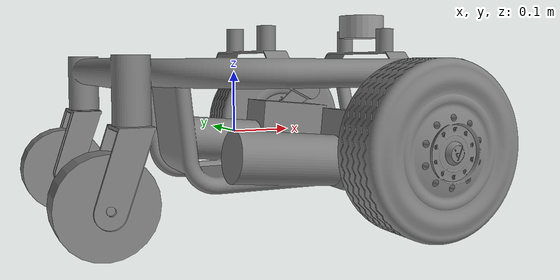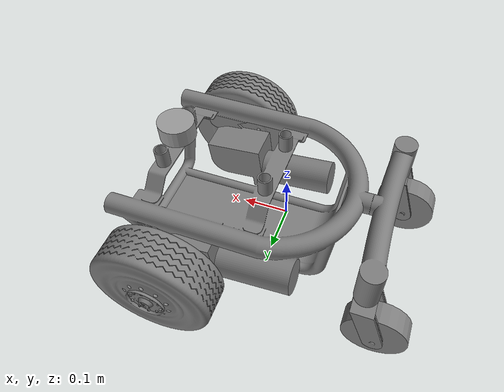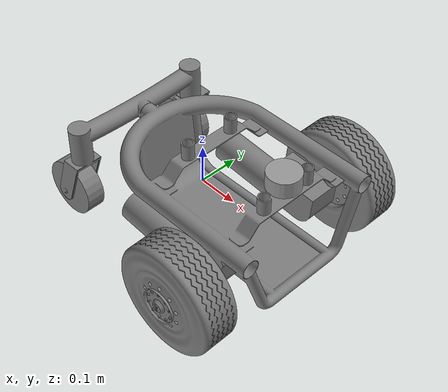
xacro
<?xml version="1.0"?>
<robot xmlns:xacro="http://ros.org/wiki/xacro">

<xacro:include filename="inertial_macros.xacro"/>

<!-- Define robot constants -->
<!-- Measured from Fusion Model-->
  <xacro:property name="base_width" value="0.58"/>
  <xacro:property name="base_length" value="0.66"/>
  <xacro:property name="base_height" value="0.32"/>

<!-- Measured from Fusion Model-->
  <xacro:property name="wheel_radius" value="0.12"/>
  <xacro:property name="wheel_width" value="0.05"/>
  <xacro:property name="wheel_ygap" value="0.3"/>
  <xacro:property name="wheel_zoff" value="0.01"/>
  <xacro:property name="wheel_xoff" value="0.20"/>

  <xacro:property name="caster_radius" value="0.071"/>
  <xacro:property name="caster_width" value="0.047"/>
  <xacro:property name="caster_ygap" value="-0.285"/>
  <xacro:property name="caster_zoff" value="0.0985"/>
  <xacro:property name="caster_xoff" value="-0.0375"/>

<!-- Robot base link -->

  <link name="base_footprint">
  </link>

 <joint name="base_joint" type="fixed">
    <parent link="base_link"/>
    <child link="base_footprint"/>
    <origin xyz="0.0 0.0 ${-(wheel_radius+wheel_zoff)}" rpy="0 0 0"/>
  </joint>

<!-- Robot Chassis -->
  <link name="base_link">
    <visual>
      <origin rpy="0 0 0" xyz="0.0 -0.18 0.10"/>
      <geometry>
        <mesh filename="file:///home/ubuntu/scootbot/install/scootbot_description/share/scootbot_description/src/description/frame.stl" scale="0.001 0.001 0.001"/>
      </geometry>
      <material name="Gray">
          <color rgba="0.5 0.5 0.5 1.0"/>
        </material>
    </visual>
   <collision>
      <origin rpy="0 0 0" xyz="0.05 0 -0.06 "/>
      <geometry>
        <box size="0.468 0.39 0.10"/>
      </geometry>
    </collision>
  </link>

  <gazebo reference="base_link">
    <material>Gazebo/Grey</material>
  </gazebo>

 <!-- Inertial link stores the robot's inertial information - Chassis (31 Kg) + 2x Battery (5.5 Kg Each) = 42 Kg -->
  <link name="inertial_link">
    <xacro:inertial_box mass="42" x="0.5" y="0.4" z="0.21">
            <origin xyz="0.1 0 0" rpy="0 0 0"/>
    </xacro:inertial_box>
  </link>

  <joint name="inertial_joint" type="fixed">
    <origin xyz="0 0 0.02" rpy="0 0 0" />
    <parent link="base_link" />
    <child link="inertial_link" />
  </joint>

<!-- Wheels -->
<xacro:macro name="wheel" params="prefix x_reflect y_reflect mirror x y col_x col_y col_z">
  <link name="${prefix}_link">

    <contact>
      <lateral_friction value="1.0"/>
      <rolling_friction value="1.0"/>
      <stiffness value="30000"/>
      <damping value="1000"/>
    </contact>

    <xacro:inertial_cylinder mass="2" length="0.08" radius="0.125">
      <origin xyz="0 0 0" rpy="0 0 0"/>
    </xacro:inertial_cylinder>

      <visual>
        <origin xyz="${x} ${y} -0.135" rpy="${pi/2} 0 ${mirror} "/>
        <geometry>
          <mesh filename="file:///home/ubuntu/scootbot/install/scootbot_description/share/scootbot_description/src/description/tyre.obj" scale="0.002 0.002 0.002"/>
        </geometry>
        <material name="Gray">
          <color rgba="0.5 0.5 0.5 1.0"/>
        </material>
      </visual>

     <collision>
        <origin xyz="${col_x} ${col_y} ${col_z}" rpy="${pi/2} 0 ${mirror} "/>
        <geometry>
            <cylinder radius="0.14" length="0.09"/>
        </geometry>
        <material name="Gray">
          <color rgba="0.5 0.5 0.5 1.0"/>
        </material>
      </collision>

  </link>

    <gazebo reference="${prefix}_link">
			<mu1 value="1.0"/>
			<mu2 value="1.0"/>
			<kp value="10000000.0" />
			<kd value="1.0" />
			<fdir1 value="1 0 0"/>
		</gazebo>

    <joint name="drivewhl_${prefix}_joint" type="continuous">
      <parent link="base_link"/>
      <child link="${prefix}_link"/>
      <origin xyz="${x_reflect*wheel_xoff} ${y_reflect*(base_width/2+wheel_ygap)} ${-wheel_zoff}" rpy="0 0 0"/>
      <axis xyz="0 1 0"/>
    </joint>
</xacro:macro>

  <xacro:wheel prefix="l" x_reflect="1" y_reflect="0.43" mirror="0" x="-0.135" y="-0.05" col_x="0" col_y="0.0" col_z="0"/>
  <xacro:wheel prefix="r" x_reflect="1" y_reflect="-0.47" mirror="3.15" x="0.135" y="0.065" col_x="0" col_y="0.0144" col_z="0"/>

<!-- Caster Frame -->

<xacro:macro name="caster_frame" params="prefix x_reflect y_reflect">

    <link name="caster_frame_${prefix}_link">
      <visual>
        <origin xyz="0.22 -0.005 0.075" rpy="0 0 0"/>
        <geometry>
            <mesh filename="file:///home/ubuntu/scootbot/install/scootbot_description/share/scootbot_description/src/description/caster_frame.obj" scale="0.001 0.001 0.001"/>
        </geometry>
        <material name="Gray">
          <color rgba="0.5 0.5 0.5 1.0"/>
        </material>
      </visual>
     <collision>
        <origin xyz="0.22 -0.005 0.075" rpy="0 0 0"/>
        <geometry>
          <mesh filename="file:///home/ubuntu/scootbot/install/scootbot_description/share/scootbot_description/src/description/caster_frame.obj" scale="0.001 0.001 0.001"/>
        </geometry>
      </collision>
      <xacro:inertial_box mass="1.5" x="0.05" y="0.1" z="0.1">
        <origin xyz="0 0 0" rpy="0 0 0"/>
      </xacro:inertial_box>
    </link>

    <joint name="caster_frame_${prefix}_joint" type="continuous">
      <parent link="base_link"/>
      <child link="caster_frame_${prefix}_link"/>
      <origin xyz="-0.221 ${y_reflect} 0.026" rpy="0 0 0"/>
      <axis xyz="0 0 1"/>
    </joint>

    <gazebo reference="caster_frame_${prefix}_link">
      <mu1 value="1.0"/>
			<mu2 value="1.0"/>
			<kp value="10000000.0" />
			<kd value="1.0" />
			<fdir1 value="1 0 0"/>
    </gazebo>

  </xacro:macro>

<xacro:caster_frame prefix="l" x_reflect="1" y_reflect="-0.1752"/>
<xacro:caster_frame prefix="r" x_reflect="1" y_reflect="0.1752"/>

<!-- Caster Wheels -->
  <xacro:macro name="caster_wheel" params="prefix x_reflect y_reflect">
    <link name="casterwhl_${prefix}_link">
      <visual>
        <origin xyz="0 0 0" rpy="${pi/2} 0 0"/>
        <geometry>
            <cylinder radius="${caster_radius}" length="${caster_width}"/>
        </geometry>
        <material name="Gray">
          <color rgba="0.5 0.5 0.5 1.0"/>
        </material>
      </visual>
     <collision>
        <origin xyz="0 0 0" rpy="${pi/2} 0 0"/>
        <geometry>
          <cylinder radius="0.075" length="0.05"/>
        </geometry>
      </collision>

      <xacro:inertial_cylinder mass="0.586" length="${caster_width}" radius="${caster_radius}">
        <origin xyz="0 0 0" rpy="0 0 0"/>
      </xacro:inertial_cylinder>

    </link>

    <joint name="casterwhl_${prefix}_joint" type="continuous">
      <parent link="caster_frame_${prefix}_link"/>
      <child link="casterwhl_${prefix}_link"/>
      <origin xyz="${x_reflect*caster_xoff} ${y_reflect*(base_width/2+caster_ygap)} ${-caster_zoff}" rpy="0 0 0"/>
      <axis xyz="0 1 0"/>
    </joint>

    <gazebo reference="casterwhl_${prefix}_link">
      <mu1 value="1.0"/>
			<mu2 value="1.0"/>
			<kp value="10000000.0" />
			<kd value="1.0" />
			<fdir1 value="1 0 0"/>
    </gazebo>

  </xacro:macro>

  <xacro:caster_wheel prefix="l" x_reflect="1" y_reflect="0.47"/>
  <xacro:caster_wheel prefix="r" x_reflect="1" y_reflect="-0.47"/>

 <joint name="laser_joint" type="fixed">
        <parent link="base_link"/>
        <child link="laser_frame"/>
        <origin xyz="0.25 -0.005 0.18" rpy="0 0 0"/>
    </joint>

        <link name="laser_frame">
      <visual>
        <origin xyz="0 0 0" rpy="0 0 0"/>
        <geometry>
            <cylinder radius="0.04" length="0.04"/>
        </geometry>
      </visual>

    </link>

<gazebo reference="laser_frame">
        <mu1 value="400"/>
        <mu2 value="400"/>
        <kp value="10000000.0"/>
        <kd value="1.0"/>
        <minDepth>0.01</minDepth>
        <material>Gazebo/Grey</material>
        <turnGravityOff>false</turnGravityOff>
        <sensor name="laser" type="ray">
            <pose> 0 0 0 0 0.1 0 </pose>
            <visualize>false</visualize>
            <update_rate>10</update_rate>
            <ray>
                <scan>
                    <horizontal>
                        <samples>360</samples>
                        <min_angle>-3.14</min_angle>
                        <max_angle>3.14</max_angle>
                    </horizontal>
                </scan>
                <range>
                    <min>0.3</min>
                    <max>12</max>
                </range>
            </ray>
            <plugin name="laser_controller" filename="libgazebo_ros_ray_sensor.so">
                <ros>
                    <argument>~/out:=scan</argument>
                </ros>
                <output_type>sensor_msgs/LaserScan</output_type>
                <frame_name>laser_frame</frame_name>
            </plugin>
        </sensor>
    </gazebo>

</robot>
